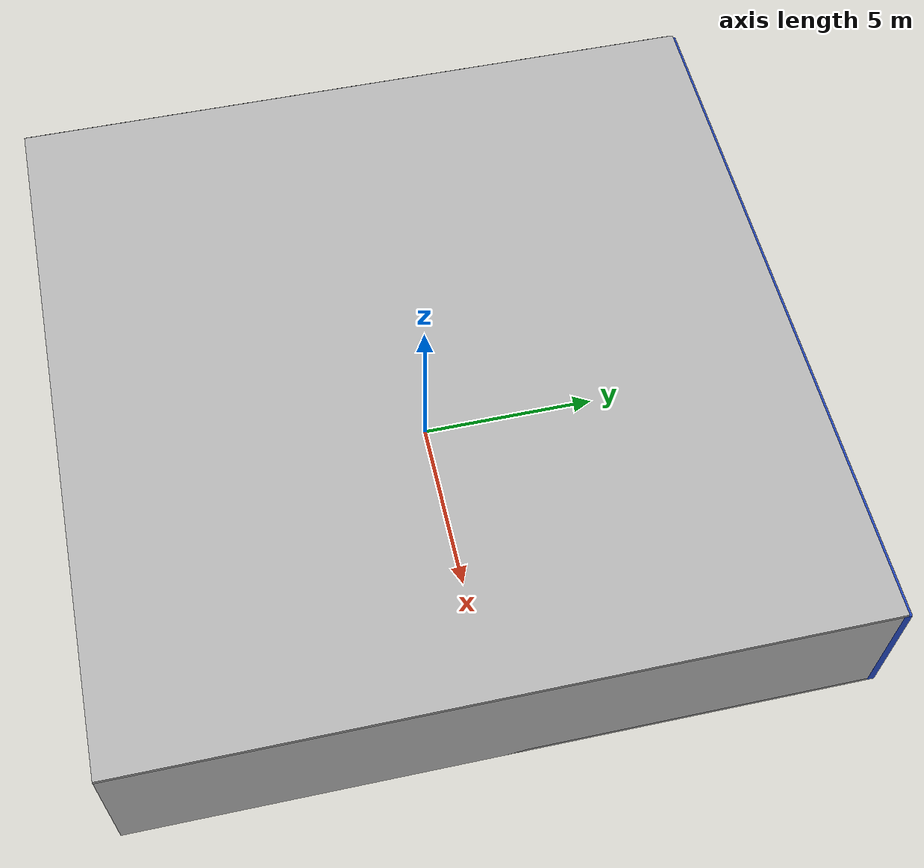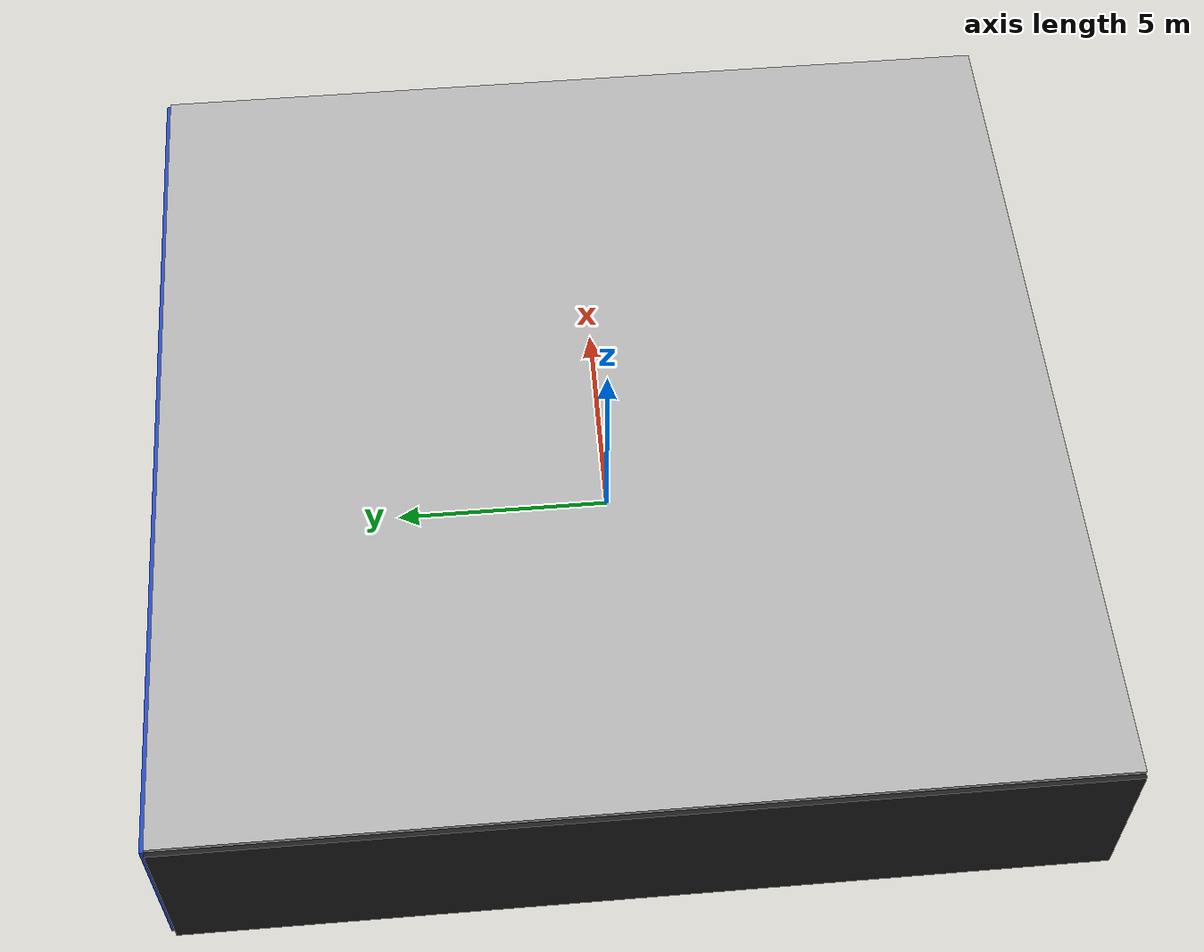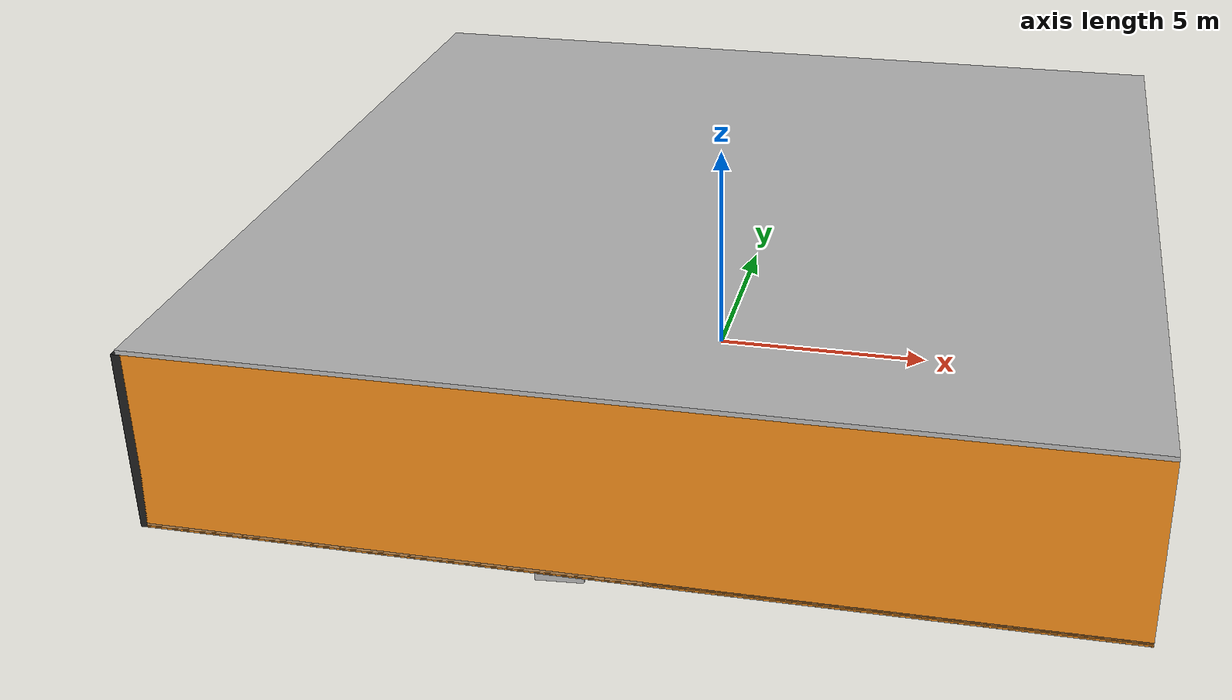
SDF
<sdf version="1.4">
 <world name="default">
  <physics type="ode">
   <max_step_size>0.001</max_step_size>
   <real_time_factor>1</real_time_factor>
   <real_time_update_rate>1000</real_time_update_rate>
   <gravity>0 0 -9.8</gravity>
  </physics>
  <scene><ambient>0.4 0.4 0.4 1</ambient><background>0.7 0.7 0.7 1</background><shadows>1</shadows></scene>
  <model name="Surrounding">
   <static>1</static>
   <link name="Ceiling">
    <collision name="Ceiling_Collision"><geometry><box><size>20 20 0.1</size></box></geometry></collision>
    <visual name="Ceiling_Visual">
     <geometry><box><size>20 20 0.1</size></box></geometry>
     <material>
      <script><uri>file://media/materials/scripts/gazebo.material</uri><name>Gazebo/CloudySky</name></script>
     </material>
    </visual>
    <pose>0 0 4.05 0 0 0</pose>
   </link>
   <link name="Wall_South">
    <collision name="Wall_South_Collision">
     <geometry><box><size>20 0 4</size></box></geometry>
     <pose>0 0 2 0 -0 0</pose>
    </collision>
    <visual name="Wall_South_Visual">
     <pose>0 0 2 0 -0 0</pose>
     <geometry><box><size>20 0 4</size></box></geometry>
     <material>
      <script><uri>file://media/materials/scripts/gazebo.material</uri><name>Gazebo/Orange</name></script>
     </material>
    </visual>
    <velocity_decay><linear>0</linear><angular>0</angular></velocity_decay>
    <pose>0 -10 0 0 -0 0</pose>
   </link>
   <link name="Wall_East">
    <collision name="Wall_21_Collision">
     <geometry><box><size>20 0 4</size></box></geometry>
     <pose>0 0 2 0 -0 0</pose>
    </collision>
    <visual name="Wall_21_Visual">
     <pose>0 0 2 0 -0 0</pose>
     <geometry><box><size>20 0 4</size></box></geometry>
     <material>
      <script><uri>file://media/materials/scripts/gazebo.material</uri><name>Gazebo/CloudySky</name></script>
     </material>
    </visual>
    <velocity_decay><linear>0</linear><angular>0</angular></velocity_decay>
    <pose>10 0 0 0 -0 1.5708</pose>
   </link>
   <link name="Wall_North">
    <collision name="Wall_22_Collision">
     <geometry><box><size>20 0.2 4</size></box></geometry>
     <pose>0 0 2 0 -0 0</pose>
    </collision>
    <visual name="Wall_22_Visual">
     <pose>0 0 2 0 -0 0</pose>
     <geometry><box><size>20 0.2 4</size></box></geometry>
     <material>
      <script><uri>file://media/materials/scripts/gazebo.material</uri><name>Gazebo/BlueLaser</name></script>
     </material>
    </visual>
    <velocity_decay><linear>0</linear><angular>0</angular></velocity_decay>
    <pose>0 10 0 0 -0 0</pose>
   </link>
   <link name="Wall_West">
    <collision name="Wall_23_Collision">
     <geometry><box><size>20 0.2 4</size></box></geometry>
     <pose>0 0 2 0 -0 0</pose>
    </collision>
    <visual name="Wall_23_Visual">
     <pose>0 0 2 0 -0 0</pose>
     <geometry><box><size>20 0.2 4</size></box></geometry>
     <material>
      <script><uri>file://media/materials/scripts/gazebo.material</uri><name>Gazebo/Black</name></script>
     </material>
    </visual>
    <velocity_decay><linear>0</linear><angular>0</angular></velocity_decay>
    <pose>-10 0 0 0 0 -1.5708</pose>
   </link>
   <link name="Ground_link">
    <collision name="collision">
     <pose>0 0 .05 0 -0 0</pose>
     <geometry><box><size>20 20 0.1</size></box></geometry>
    </collision>
    <visual name="visual">
     <pose>0 0 .05 0 -0 0</pose>
     <geometry><box><size>20 20 0.1</size></box></geometry>
     <material>
      <script><uri>file://media/materials/scripts/gazebo.material</uri><name>Gazebo/GreyTransparent</name></script>
     </material>
    </visual>
   </link>
   <static>1</static>
  </model>
  <spherical_coordinates>
   <surface_model>EARTH_WGS84</surface_model>
   <latitude_deg>0</latitude_deg>
   <longitude_deg>0</longitude_deg>
   <elevation>0</elevation>
   <heading_deg>0</heading_deg>
  </spherical_coordinates>
  <light name="lightball_0" type="diffuse">
   <diffuse>0.8 0.8 0.8 1</diffuse>
   <specular>0.2 0.2 0.2 1</specular>
   <attenuation>
    <range>100</range>
    <constant>0.7</constant>
    <linear>0.01</linear>
    <quadratic>0.001</quadratic>
   </attenuation>
   <direction>-0.5 0.1 -0.9</direction>
   <pose>1.98287563827 -4.49972701493 3.23554874913 0 0 0</pose>
  </light>
  <light name="lightball_1" type="diffuse">
   <diffuse>0.8 0.8 0.8 1</diffuse>
   <specular>0.2 0.2 0.2 1</specular>
   <attenuation>
    <range>100</range>
    <constant>0.7</constant>
    <linear>0.01</linear>
    <quadratic>0.001</quadratic>
   </attenuation>
   <direction>-0.5 0.1 -0.9</direction>
   <pose>-3.19079114038 6.15732414699 3.47027418536 0 0 0</pose>
  </light>
  <light name="lightball_2" type="diffuse">
   <diffuse>0.8 0.8 0.8 1</diffuse>
   <specular>0.2 0.2 0.2 1</specular>
   <attenuation>
    <range>100</range>
    <constant>0.7</constant>
    <linear>0.01</linear>
    <quadratic>0.001</quadratic>
   </attenuation>
   <direction>-0.5 0.1 -0.9</direction>
   <pose>-8.18935880404 2.55871373354 3.80670170957 0 0 0</pose>
  </light>
  <light name="lightball_3" type="diffuse">
   <diffuse>0.8 0.8 0.8 1</diffuse>
   <specular>0.2 0.2 0.2 1</specular>
   <attenuation>
    <range>100</range>
    <constant>0.7</constant>
    <linear>0.01</linear>
    <quadratic>0.001</quadratic>
   </attenuation>
   <direction>-0.5 0.1 -0.9</direction>
   <pose>-6.18903289983 -1.54404228655 0.956079893878 0 0 0</pose>
  </light>
  <light name="lightball_4" type="diffuse">
   <diffuse>0.8 0.8 0.8 1</diffuse>
   <specular>0.2 0.2 0.2 1</specular>
   <attenuation>
    <range>100</range>
    <constant>0.7</constant>
    <linear>0.01</linear>
    <quadratic>0.001</quadratic>
   </attenuation>
   <direction>-0.5 0.1 -0.9</direction>
   <pose>-5.45270499809 2.15031271775 0.823444552727 0 0 0</pose>
  </light>
  <light name="lightball_5" type="diffuse">
   <diffuse>0.8 0.8 0.8 1</diffuse>
   <specular>0.2 0.2 0.2 1</specular>
   <attenuation>
    <range>100</range>
    <constant>0.7</constant>
    <linear>0.01</linear>
    <quadratic>0.001</quadratic>
   </attenuation>
   <direction>-0.5 0.1 -0.9</direction>
   <pose>-7.47275966321 9.88549802346 3.4214239735 0 0 0</pose>
  </light>
  <include><uri>model://cabinet</uri><pose>-8.6096107052 -4.46878433871 0 0 0 2.04537825699</pose></include>
  <include>
   <uri>model://textured_shapes</uri>
   <pose>-1.57650711518 -7.52167459174 0 0 0 0.0707092781702</pose>
  </include>
  <include><uri>model://cabinet</uri><pose>-1.21655387918 -4.37722781434 0 0 0 1.71708175135</pose></include>
  <include>
   <uri>model://construction_cone</uri>
   <pose>-2.20979929496 2.35294915532 0 0 0 2.40509432591</pose>
  </include>
  <include>
   <uri>model://robocup_3Dsim_goal</uri>
   <pose>4.72459107538 -5.32135540584 0 0 0 2.23120609666</pose>
  </include>
  <include>
   <uri>model://robocup_3Dsim_goal</uri>
   <pose>8.48550155926 1.47270878095 0 0 0 2.84618570122</pose>
  </include>
 </world>
</sdf>

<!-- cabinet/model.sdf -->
<sdf version="1.5">
  <model name="cabinet">
    <static>true</static>
    <link name="cabinet_bottom_plate">
      <inertial>
        <pose>0 0 -1 0 0 0</pose>
        <inertia>
          <ixx>2.050000</ixx>
          <ixy>0</ixy>
          <ixz>0</ixz>
          <iyy>2.050000</iyy>
          <iyz>0</iyz>
          <izz>2.050000</izz>
        </inertia>
        <mass>25.000000</mass>
      </inertial>
      <collision name="cabinet_bottom_plate_geom">
        <pose>0 0 0.010000 0 0 0</pose>
        <geometry>
          <box>
            <size>0.450000 0.450000 0.020000</size>
          </box>
        </geometry>
      </collision>
      <visual name="cabinet_bottom_plate_geom_visual">
        <pose>0 0 0.010000 0 0 0</pose>
        <geometry>
          <box>
            <size>0.450000 0.450000 0.020000</size>
          </box>
        </geometry>
        <material>
          <script>
            <uri>model://media/materials/scripts/gazebo.material</uri>
            <name>Gazebo/Wood</name>
          </script>
        </material>
      </visual>
      <collision name="cabinet_bottom_plate_geom_cabinet_back_plate">
        <pose>0.235000 0 0.510000 0 0 0</pose>
        <geometry>
          <box>
            <size>0.020000 0.450000 1.020000</size>
          </box>
        </geometry>
      </collision>
      <visual name="cabinet_bottom_plate_geom_cabinet_back_plate_visual">
        <pose>0.235000 0 0.510000 0 0 0</pose>
        <geometry>
          <box>
            <size>0.020000 0.450000 1.020000</size>
          </box>
        </geometry>
        <material>
          <script>
            <uri>model://media/materials/scripts/gazebo.material</uri>
            <name>Gazebo/Wood</name>
          </script>
        </material>
      </visual>
      <collision name="cabinet_bottom_plate_geom_cabinet_left_plate">
        <pose>0 0.235000 0.510000 0 0 0</pose>
        <geometry>
          <box>
            <size>0.450000 0.020000 1.020000</size>
          </box>
        </geometry>
      </collision>
      <visual name="cabinet_bottom_plate_geom_cabinet_left_plate_visual">
        <pose>0 0.235000 0.510000 0 0 0</pose>
        <geometry>
          <box>
            <size>0.450000 0.020000 1.020000</size>
          </box>
        </geometry>
        <material>
          <script>
            <uri>model://media/materials/scripts/gazebo.material</uri>
            <name>Gazebo/Wood</name>
          </script>
        </material>
      </visual>
      <collision name="cabinet_bottom_plate_geom_cabinet_middle_plate">
        <pose>0 0 0.510000 0 0 0</pose>
        <geometry>
          <box>
            <size>0.450000 0.450000 0.020000</size>
          </box>
        </geometry>
      </collision>
      <visual name="cabinet_bottom_plate_geom_cabinet_middle_plate_visual">
        <pose>0 0 0.510000 0 0 0</pose>
        <geometry>
          <box>
            <size>0.450000 0.450000 0.020000</size>
          </box>
        </geometry>
        <material>
          <script>
            <uri>model://media/materials/scripts/gazebo.material</uri>
            <name>Gazebo/Wood</name>
          </script>
        </material>
      </visual>
      <collision name="cabinet_bottom_plate_geom_cabinet_right_plate">
        <pose>0 -0.235000 0.510000 0 0 0</pose>
        <geometry>
          <box>
            <size>0.450000 0.020000 1.020000</size>
          </box>
        </geometry>
      </collision>
      <visual name="cabinet_bottom_plate_geom_cabinet_right_plate_visual">
        <pose>0 -0.235000 0.510000 0 0 0</pose>
        <geometry>
          <box>
            <size>0.450000 0.020000 1.020000</size>
          </box>
        </geometry>
        <material>
          <script>
            <uri>model://media/materials/scripts/gazebo.material</uri>
            <name>Gazebo/Wood</name>
          </script>
        </material>
      </visual>
      <collision name="cabinet_bottom_plate_geom_cabinet_top_plate">
        <pose>0 0 1.010000 0 0 0</pose>
        <geometry>
          <box>
            <size>0.450000 0.450000 0.020000</size>
          </box>
        </geometry>
      </collision>
      <visual name="cabinet_bottom_plate_geom_cabinet_top_plate_visual">
        <pose>0 0 1.010000 0 0 0</pose>
        <geometry>
          <box>
            <size>0.450000 0.450000 0.020000</size>
          </box>
        </geometry>
        <material>
          <script>
            <uri>model://media/materials/scripts/gazebo.material</uri>
            <name>Gazebo/Wood</name>
          </script>
        </material>
      </visual>
    </link>
  </model>
</sdf>

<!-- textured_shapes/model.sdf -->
<sdf version="1.6">
  <model name="textured_shapes">
    <pose>0 0 0.5 0 0 0</pose>
    <link name="box">
      <pose>0 -1.5 0 0 0 0</pose>
      <collision name="collision">
        <geometry>
          <box>
            <size>1 1 1</size>
          </box>
        </geometry>
      </collision>
      <visual name="visual">
        <geometry>
          <box>
            <size>1 1 1</size>
          </box>
        </geometry>
        <material>
          <script>
            <uri>model://../model_source/models/textured_shapes/materials/scripts</uri>
            <uri>model://../model_source/models/textured_shapes/materials/textures</uri>
            <name>TexturedShape/Squares</name>
          </script>
        </material>
      </visual>
    </link>
    <link name="sphere">
      <collision name="collision">
        <geometry>
          <sphere>
            <radius>0.5</radius>
          </sphere>
        </geometry>
      </collision>
      <visual name="visual">
        <geometry>
          <sphere>
            <radius>0.5</radius>
          </sphere>
        </geometry>
        <material>
          <script>
            <uri>model://../model_source/models/textured_shapes/materials/scripts</uri>
            <uri>model://../model_source/models/textured_shapes/materials/textures</uri>
            <name>TexturedShape/Squares</name>
          </script>
        </material>
      </visual>
    </link>
    <link name="cylinder">
      <pose>0 1.5 0 0 0 0</pose>
      <collision name="collision">
        <geometry>
          <cylinder>
            <radius>0.5</radius>
            <length>1</length>
          </cylinder>
        </geometry>
      </collision>
      <visual name="visual">
        <geometry>
          <cylinder>
            <radius>0.5</radius>
            <length>1</length>
          </cylinder>
        </geometry>
        <material>
          <script>
            <uri>model://../model_source/models/textured_shapes/materials/scripts</uri>
            <uri>model://../model_source/models/textured_shapes/materials/textures</uri>
            <name>TexturedShape/Squares</name>
          </script>
        </material>
      </visual>
    </link>
  </model>
</sdf>

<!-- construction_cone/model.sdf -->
<sdf version="1.5">
  <model name="Construction Cone">
    <link name="link">
      <collision name="collision">
        <geometry>
          <mesh>
            <scale>10 10 10</scale>
            <uri>file://isr-testbed/construction_cone/meshes/construction_cone.dae</uri>
          </mesh>
        </geometry>
      </collision>
      <visual name="visual">
        <geometry>
          <mesh>
            <scale>10 10 10</scale>
            <uri>file://isr-testbed/construction_cone/meshes/construction_cone.dae</uri>
          </mesh>
        </geometry>
      </visual>
    </link>
  </model>
</sdf>

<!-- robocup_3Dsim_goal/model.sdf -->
<sdf version="1.5">
  <model name="robocup_3d_goal">
    <static>true</static>
    <link name="left_post">
      <pose>0 1.05 0.45 0 0 0</pose>
      <collision name="collision">
        <geometry>
          <cylinder>
            <radius>0.05</radius>
            <length>0.9</length>
          </cylinder>
        </geometry>
      </collision>
      <visual name="visual">
        <geometry>
          <cylinder>
            <radius>0.05</radius>
            <length>0.9</length>
          </cylinder>
        </geometry>
        <material>
          <script>
            <uri>file://media/materials/scripts/gazebo.material</uri>
            <name>Gazebo/ZincYellow</name>
          </script>
        </material>
      </visual>
    </link>
    <link name="left_support_horiz_lower">
      <pose>0.30 1.05 0.01 0 0 0</pose>
      <collision name="collision">
        <geometry>
          <box>
            <size>0.50 0.02 0.02</size>
          </box>
        </geometry>
      </collision>
      <visual name="visual">
        <geometry>
          <box>
            <size>0.50 0.02 0.02</size>
          </box>
        </geometry>
        <material>
          <script>
            <uri>file://media/materials/scripts/gazebo.material</uri>
            <name>Gazebo/White</name>
          </script>
        </material>
      </visual>
    </link>
    <link name="left_support_horiz_upper">
      <pose>0.30 1.05 0.79 0 0 0</pose>
      <collision name="collision">
        <geometry>
          <box>
            <size>0.50 0.02 0.02</size>
          </box>
        </geometry>
      </collision>
      <visual name="visual">
        <geometry>
          <box>
            <size>0.50 0.02 0.02</size>
          </box>
        </geometry>
        <material>
          <script>
            <uri>file://media/materials/scripts/gazebo.material</uri>
            <name>Gazebo/White</name>
          </script>
        </material>
      </visual>
    </link>
    <link name="left_support_vertical">
      <pose>0.56 1.05 0.4 0 1.5708 0</pose>
      <collision name="collision">
        <geometry>
          <box>
            <size>0.80 0.02 0.02</size>
          </box>
        </geometry>
      </collision>
      <visual name="visual">
        <geometry>
          <box>
            <size>0.80 0.02 0.02</size>
          </box>
        </geometry>
        <material>
          <script>
            <uri>file://media/materials/scripts/gazebo.material</uri>
            <name>Gazebo/White</name>
          </script>
        </material>
      </visual>
    </link>
    <link name="right_support_horiz_lower">
      <pose>0.30 -1.05 0.01 0 0 0</pose>
      <collision name="collision">
        <geometry>
          <box>
            <size>0.50 0.02 0.02</size>
          </box>
        </geometry>
      </collision>
      <visual name="visual">
        <geometry>
          <box>
            <size>0.50 0.02 0.02</size>
          </box>
        </geometry>
        <material>
          <script>
            <uri>file://media/materials/scripts/gazebo.material</uri>
            <name>Gazebo/White</name>
          </script>
        </material>
      </visual>
    </link>
    <link name="right_support_horiz_upper">
      <pose>0.30 -1.05 0.79 0 0 0</pose>
      <collision name="collision">
        <geometry>
          <box>
            <size>0.50 0.02 0.02</size>
          </box>
        </geometry>
      </collision>
      <visual name="visual">
        <geometry>
          <box>
            <size>0.50 0.02 0.02</size>
          </box>
        </geometry>
        <material>
          <script>
            <uri>file://media/materials/scripts/gazebo.material</uri>
            <name>Gazebo/White</name>
          </script>
        </material>
      </visual>
    </link>
    <link name="right_support_vertical">
      <pose>0.56 -1.05 0.4 0 1.5708 0</pose>
      <collision name="collision">
        <geometry>
          <box>
            <size>0.80 0.02 0.02</size>
          </box>
        </geometry>
      </collision>
      <visual name="visual">
        <geometry>
          <box>
            <size>0.80 0.02 0.02</size>
          </box>
        </geometry>
        <material>
          <script>
            <uri>file://media/materials/scripts/gazebo.material</uri>
            <name>Gazebo/White</name>
          </script>
        </material>
      </visual>
    </link>
    <link name="center_support_horiz_lower">
      <pose>0.56 0 0.01 0 1.5708 0</pose>
      <collision name="collision">
        <geometry>
          <box>
            <size>0.02 2.08 0.02</size>
          </box>
        </geometry>
      </collision>
      <visual name="visual">
        <geometry>
          <box>
            <size>0.02 2.08 0.02</size>
          </box>
        </geometry>
        <material>
          <script>
            <uri>file://media/materials/scripts/gazebo.material</uri>
            <name>Gazebo/White</name>
          </script>
        </material>
      </visual>
    </link>
    <link name="center_support_horiz_upper">
      <pose>0.56 0 0.79 0 1.5708 0</pose>
      <collision name="collision">
        <geometry>
          <box>
            <size>0.02 2.08 0.02</size>
          </box>
        </geometry>
      </collision>
      <visual name="visual">
        <geometry>
          <box>
            <size>0.02 2.08 0.02</size>
          </box>
        </geometry>
        <material>
          <script>
            <uri>file://media/materials/scripts/gazebo.material</uri>
            <name>Gazebo/White</name>
          </script>
        </material>
      </visual>
    </link>
    <link name="right_post">
      <pose>0 -1.05 0.45 0 0 0</pose>
      <collision name="collision">
        <geometry>
          <cylinder>
            <radius>0.05</radius>
            <length>0.9</length>
          </cylinder>
        </geometry>
      </collision>
      <visual name="visual">
        <geometry>
          <cylinder>
            <radius>0.05</radius>
            <length>0.9</length>
          </cylinder>
        </geometry>
        <material>
          <script>
            <uri>file://media/materials/scripts/gazebo.material</uri>
            <name>Gazebo/ZincYellow</name>
          </script>
        </material>
      </visual>
    </link>
    <link name="crossbar">
      <pose>0 0 0.85 1.57 1.57 0</pose>
      <collision name="collision">
        <geometry>
          <cylinder>
            <radius>0.05</radius>
            <length>2.0</length>
          </cylinder>
        </geometry>
      </collision>
      <visual name="visual">
        <geometry>
          <cylinder>
            <radius>0.05</radius>
            <length>2.0</length>
          </cylinder>
        </geometry>
        <material>
          <script>
            <uri>file://media/materials/scripts/gazebo.material</uri>
            <name>Gazebo/ZincYellow</name>
          </script>
        </material>
      </visual>
    </link>
    <link name="center_net">
      <pose>0.56 0 0.40 0 0 0</pose>
      <collision name="collision">
        <geometry>
          <box>
            <size>0.01 2.1 0.80</size>
          </box>
        </geometry>
      </collision>
      <visual name="visual">
        <geometry>
          <box>
            <size>0.01 2.1 0.80</size>
          </box>
        </geometry>
        <material>
          <script>
            <uri>model://../model_source/models/robocup09_spl_field/materials/scripts/</uri>
            <uri>model://../model_source/models/robocup09_spl_field/materials/textures/</uri>
            <name>RoboCup/Net</name>
          </script>
        </material>
      </visual>
    </link>
    <link name="left_net">
      <pose>0.30 1.05 0.40 0 0 0</pose>
      <collision name="collision">
        <geometry>
          <box>
            <size>0.50 0.01 0.76</size>
          </box>
        </geometry>
      </collision>
      <visual name="visual">
        <geometry>
          <box>
            <size>0.50 0.01 0.76</size>
          </box>
        </geometry>
        <material>
          <script>
            <uri>model://../model_source/models/robocup09_spl_field/materials/scripts/</uri>
            <uri>model://../model_source/models/robocup09_spl_field/materials/textures/</uri>
            <name>RoboCup/Net</name>
          </script>
        </material>
      </visual>
    </link>
    <link name="right_net">
      <pose>0.30 -1.05 0.40 0 0 0</pose>
      <collision name="collision">
        <geometry>
          <box>
            <size>0.50 0.01 0.76</size>
          </box>
        </geometry>
      </collision>
      <visual name="visual">
        <geometry>
          <box>
            <size>0.50 0.01 0.76</size>
          </box>
        </geometry>
        <material>
          <script>
            <uri>model://../model_source/models/robocup09_spl_field/materials/scripts/</uri>
            <uri>model://../model_source/models/robocup09_spl_field/materials/textures/</uri>
            <name>RoboCup/Net</name>
          </script>
        </material>
      </visual>
    </link>
  </model>
</sdf>
